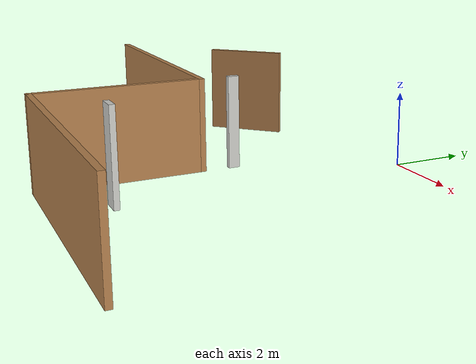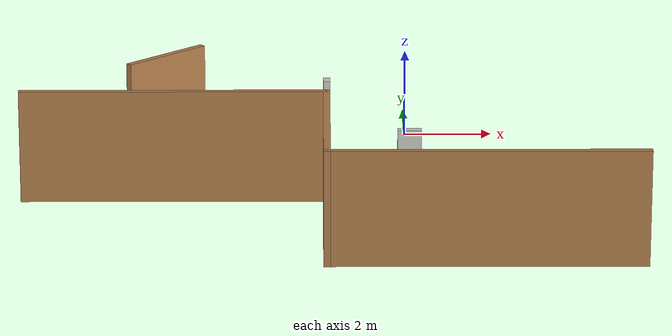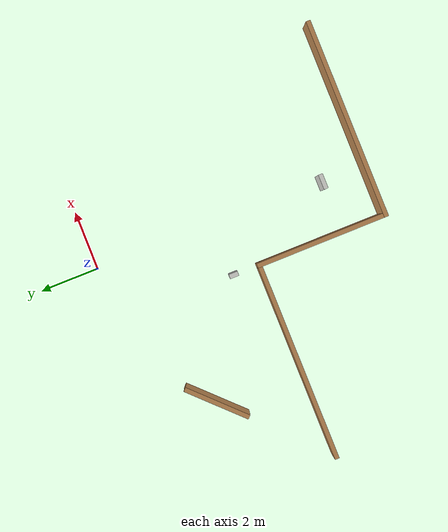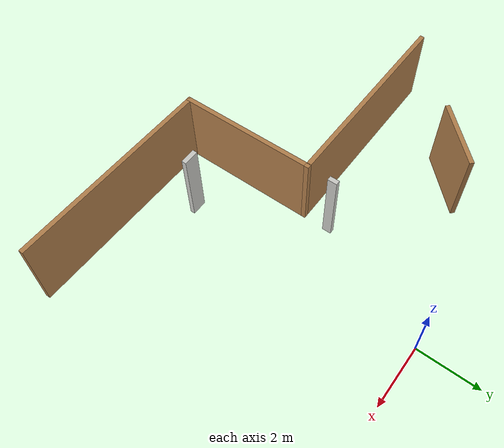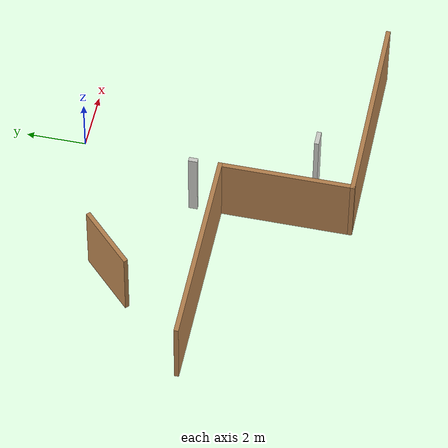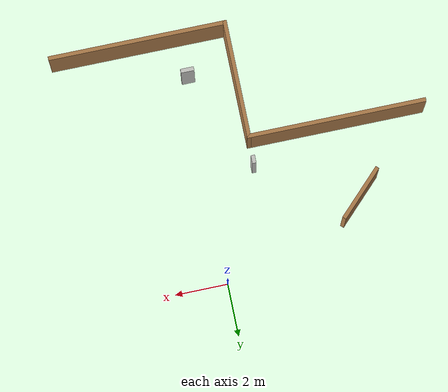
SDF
<sdf version="1.7">
 <model name="mundo_normal1">
  <pose>-1.83298 -2.00796 0 0 -0 0</pose>
  <link name="Wall_11">
   <collision name="Wall_11_Collision">
    <geometry><box><size>2.25 0.15 2.5</size></box></geometry>
    <pose>0 0 1.25 0 -0 0</pose>
   </collision>
   <visual name="Wall_11_Visual">
    <pose>0 0 1.25 0 -0 0</pose>
    <geometry><box><size>2.25 0.15 2.5</size></box></geometry>
    <material>
     <script><uri>file://media/materials/scripts/gazebo.material</uri><name>Gazebo/Wood</name></script>
     <ambient>1 1 1 1</ambient>
    </material>
    <meta><layer>0</layer></meta>
   </visual>
   <pose>-3.59246 -0.042462 0 0 -0 -2.35619</pose>
  </link>
  <link name="Wall_13">
   <collision name="Wall_13_Collision">
    <geometry><box><size>0.5 0.15 2.5</size></box></geometry>
    <pose>0 0 1.25 0 -0 0</pose>
   </collision>
   <visual name="Wall_13_Visual">
    <pose>0 0 1.25 0 -0 0</pose>
    <geometry><box><size>0.5 0.15 2.5</size></box></geometry>
    <material>
     <script><uri>file://media/materials/scripts/gazebo.material</uri><name>Gazebo/CeilingTiled</name></script>
     <ambient>1 1 1 1</ambient>
    </material>
    <meta><layer>0</layer></meta>
   </visual>
   <pose>1.7247 -5.83749 0 0 -0 0</pose>
  </link>
  <link name="Wall_16">
   <collision name="Wall_16_Collision">
    <geometry><box><size>0.3 0.15 2.5</size></box></geometry>
    <pose>0 0 1.25 0 -0 0</pose>
   </collision>
   <visual name="Wall_16_Visual">
    <pose>0 0 1.25 0 -0 0</pose>
    <geometry><box><size>0.3 0.15 2.5</size></box></geometry>
    <material>
     <script><uri>file://media/materials/scripts/gazebo.material</uri><name>Gazebo/CeilingTiled</name></script>
     <ambient>1 1 1 1</ambient>
    </material>
    <meta><layer>0</layer></meta>
   </visual>
   <pose>0.012384 -2.06921 0 0 -0 -1.5708</pose>
  </link>
  <link name="Wall_3">
   <collision name="Wall_3_Collision">
    <geometry><box><size>6.75 0.15 2.5</size></box></geometry>
    <pose>0 0 1.25 0 -0 0</pose>
   </collision>
   <visual name="Wall_3_Visual">
    <pose>0 0 1.25 0 -0 0</pose>
    <geometry><box><size>6.75 0.15 2.5</size></box></geometry>
    <material>
     <script><uri>file://media/materials/scripts/gazebo.material</uri><name>Gazebo/Wood</name></script>
     <ambient>1 1 1 1</ambient>
    </material>
    <meta><layer>0</layer></meta>
   </visual>
   <pose>3.3 -7.3 0 0 -0 3.14159</pose>
  </link>
  <link name="Wall_6">
   <collision name="Wall_6_Collision">
    <geometry><box><size>4.5 0.15 2.5</size></box></geometry>
    <pose>0 0 1.25 0 -0 0</pose>
   </collision>
   <visual name="Wall_6_Visual">
    <pose>0 0 1.25 0 -0 0</pose>
    <geometry><box><size>4.5 0.15 2.5</size></box></geometry>
    <material>
     <script><uri>file://media/materials/scripts/gazebo.material</uri><name>Gazebo/Wood</name></script>
     <ambient>1 1 1 1</ambient>
    </material>
    <meta><layer>0</layer></meta>
   </visual>
   <pose>0 -5.125 0 0 -0 1.5708</pose>
  </link>
  <link name="Wall_7">
   <collision name="Wall_7_Collision">
    <geometry><box><size>6.75 0.15 2.5</size></box></geometry>
    <pose>0 0 1.25 0 -0 0</pose>
   </collision>
   <visual name="Wall_7_Visual">
    <pose>0 0 1.25 0 -0 0</pose>
    <geometry><box><size>6.75 0.15 2.5</size></box></geometry>
    <material>
     <script><uri>file://media/materials/scripts/gazebo.material</uri><name>Gazebo/Wood</name></script>
     <ambient>1 1 1 1</ambient>
    </material>
    <meta><layer>0</layer></meta>
   </visual>
   <pose>-3.3 -2.95 0 0 -0 3.14159</pose>
  </link>
  <static>1</static>
 </model>
</sdf>
